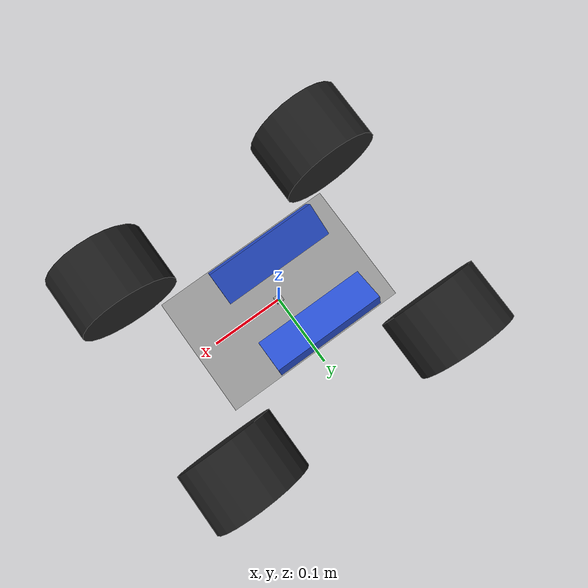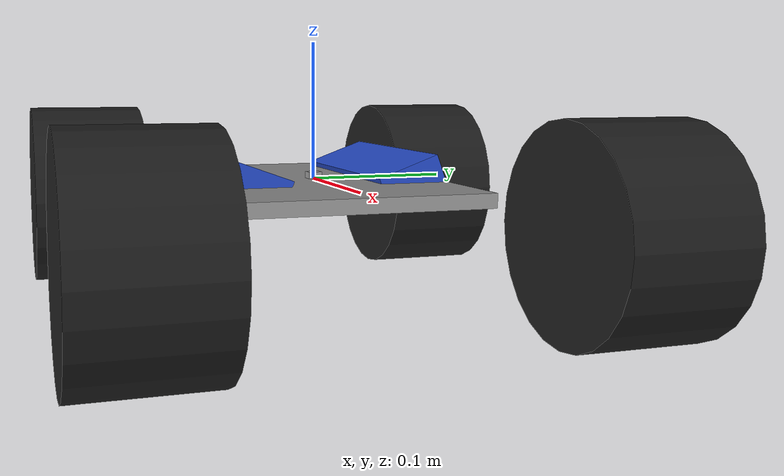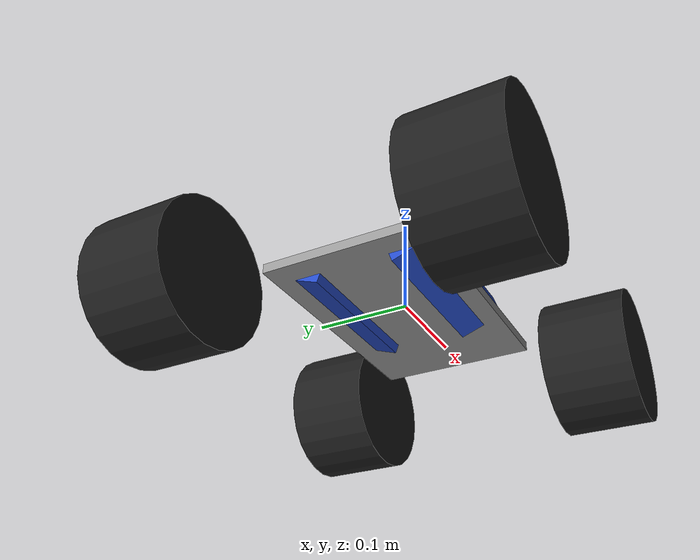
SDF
<?xml version="1.0"?>
<sdf version='1.7'>
  <model name='em_3905'>
    <link name='base_link'>
      <inertial>
        <pose>-0.006634 0 -0.003536 0 -0 0</pose>
        <mass>3.795</mass>
        <inertia>
          <ixx>0.0121404</ixx>
          <ixy>0</ixy>
          <ixz>0.000102071</ixz>
          <iyy>0.0201814</iyy>
          <iyz>0</iyz>
          <izz>0.0301018</izz>
        </inertia>
      </inertial>
      <collision name='base_link_fixed_joint_lump__chassis_collision'>
        <pose>0 0 -0.005 0 -0 0</pose>
        <geometry>
          <box>
            <size>0.258 0.168 0.01</size>
          </box>
        </geometry>
        <surface>
          <contact>
            <ode/>
          </contact>
          <friction>
            <ode/>
          </friction>
        </surface>
      </collision>
      <collision name='base_link_fixed_joint_lump__left_battery_collision_1'>
        <pose>-0.025 0.057319 0.00052 0.349066 -0 0</pose>
        <geometry>
          <box>
            <size>0.16 0.047 0.024</size>
          </box>
        </geometry>
        <surface>
          <contact>
            <ode/>
          </contact>
          <friction>
            <ode/>
          </friction>
        </surface>
      </collision>
      <collision name='base_link_fixed_joint_lump__right_battery_collision_2'>
        <pose>-0.025 -0.057319 0.00052 -0.349066 0 0</pose>
        <geometry>
          <box>
            <size>0.16 0.047 0.024</size>
          </box>
        </geometry>
        <surface>
          <contact>
            <ode/>
          </contact>
          <friction>
            <ode/>
          </friction>
        </surface>
      </collision>
      <visual name='base_link_visual'>
        <pose>0 0 0 0 -0 0</pose>
        <geometry>
          <box>
            <size>0.01 0.01 0.01</size>
          </box>
        </geometry>
        <material>
          <script>
            <name>Gazebo/Grey</name>
            <uri>file://media/materials/scripts/gazebo.material</uri>
          </script>
        </material>
      </visual>
      <visual name='base_link_fixed_joint_lump__chassis_visual_1'>
        <pose>0 0 -0.005 0 -0 0</pose>
        <geometry>
          <box>
            <size>0.258 0.168 0.01</size>
          </box>
        </geometry>
        <material>
          <script>
            <name>Gazebo/Grey</name>
            <uri>file://media/materials/scripts/gazebo.material</uri>
          </script>
        </material>
      </visual>
      <visual name='base_link_fixed_joint_lump__left_battery_visual_2'>
        <pose>-0.025 0.057319 0.00052 0.349066 -0 0</pose>
        <geometry>
          <box>
            <size>0.16 0.047 0.024</size>
          </box>
        </geometry>
        <material>
          <script>
            <name>Gazebo/Blue</name>
            <uri>file://media/materials/scripts/gazebo.material</uri>
          </script>
        </material>
      </visual>
      <visual name='base_link_fixed_joint_lump__right_battery_visual_3'>
        <pose>-0.025 -0.057319 0.00052 -0.349066 0 0</pose>
        <geometry>
          <box>
            <size>0.16 0.047 0.024</size>
          </box>
        </geometry>
        <material>
          <script>
            <name>Gazebo/Blue</name>
            <uri>file://media/materials/scripts/gazebo.material</uri>
          </script>
        </material>
      </visual>
    </link>
    <joint name='left_front_shock' type='prismatic'>
      <pose relative_to='base_link'>0.1675 0.1525 -0.0235 0 -0 0</pose>
      <parent>base_link</parent>
      <child>left_steering_link</child>
      <axis>
        <xyz>0 0 -1</xyz>
        <limit>
          <lower>-0.042</lower>
          <upper>0.042</upper>
          <effort>12.5106</effort>
          <velocity>1000</velocity>
        </limit>
        <dynamics>
          <spring_reference>0</spring_reference>
          <spring_stiffness>0</spring_stiffness>
        </dynamics>
      </axis>
    </joint>
    <link name='left_steering_link'>
      <pose relative_to='left_front_shock'>0 0 0 0 -0 0</pose>
      <inertial>
        <pose>0 0 0 0 -0 0</pose>
        <mass>0.001</mass>
        <inertia>
          <ixx>0.001</ixx>
          <ixy>0</ixy>
          <ixz>0</ixz>
          <iyy>0.001</iyy>
          <iyz>0</iyz>
          <izz>0.001</izz>
        </inertia>
      </inertial>
    </link>
    <joint name='left_steering_joint' type='revolute'>
      <pose relative_to='left_steering_link'>0 0 0 0 -0 0</pose>
      <parent>left_steering_link</parent>
      <child>left_front_axle_carrier</child>
      <axis>
        <xyz>0 0 1</xyz>
        <limit>
          <lower>-0.785398</lower>
          <upper>0.785398</upper>
          <effort>0.5649</effort>
          <velocity>4.553</velocity>
        </limit>
        <dynamics>
          <spring_reference>0</spring_reference>
          <spring_stiffness>0</spring_stiffness>
        </dynamics>
      </axis>
    </joint>
    <link name='left_front_axle_carrier'>
      <pose relative_to='left_steering_joint'>0 0 0 0 -0 0</pose>
      <inertial>
        <pose>0 0 0 0 -0 0</pose>
        <mass>0.001</mass>
        <inertia>
          <ixx>0.001</ixx>
          <ixy>0</ixy>
          <ixz>0</ixz>
          <iyy>0.001</iyy>
          <iyz>0</iyz>
          <izz>0.001</izz>
        </inertia>
      </inertial>
    </link>
    <joint name='left_front_axle' type='revolute'>
      <pose relative_to='left_front_axle_carrier'>0 0 0 1.5708 -0 0</pose>
      <parent>left_front_axle_carrier</parent>
      <child>left_front_wheel</child>
      <axis>
        <xyz>0 0 -1</xyz>
        <limit>
          <effort>5.12766</effort>
          <velocity>244.87</velocity>
          <lower>-1e+16</lower>
          <upper>1e+16</upper>
        </limit>
        <dynamics>
          <spring_reference>0</spring_reference>
          <spring_stiffness>0</spring_stiffness>
        </dynamics>
      </axis>
    </joint>
    <link name='left_front_wheel'>
      <pose relative_to='left_front_axle'>0 0 0 0 -0 0</pose>
      <inertial>
        <pose>0 0 0 0 -0 0</pose>
        <mass>0.29</mass>
        <inertia>
          <ixx>0.000746466</ixx>
          <ixy>0</ixy>
          <ixz>0</ixz>
          <iyy>0.000746466</iyy>
          <iyz>0</iyz>
          <izz>0.00111094</izz>
        </inertia>
      </inertial>
      <collision name='left_front_wheel_collision'>
        <pose>0 -0 0 0 -0 0</pose>
        <geometry>
          <cylinder>
            <length>0.0889</length>
            <radius>0.073025</radius>
          </cylinder>
        </geometry>
        <surface>
          <contact>
            <ode/>
          </contact>
          <friction>
            <ode/>
          </friction>
        </surface>
      </collision>
      <visual name='left_front_wheel_visual'>
        <pose>0 -0 0 0 -0 0</pose>
        <geometry>
          <cylinder>
            <length>0.0889</length>
            <radius>0.073025</radius>
          </cylinder>
        </geometry>
        <material>
          <script>
            <name>Gazebo/Black</name>
            <uri>file://media/materials/scripts/gazebo.material</uri>
          </script>
        </material>
      </visual>
    </link>
    <joint name='left_rear_shock' type='prismatic'>
      <pose relative_to='base_link'>-0.1675 0.1525 -0.0235 0 -0 0</pose>
      <parent>base_link</parent>
      <child>left_rear_axle_carrier</child>
      <axis>
        <xyz>0 0 -1</xyz>
        <limit>
          <lower>-0.042</lower>
          <upper>0.042</upper>
          <effort>12.5106</effort>
          <velocity>1000</velocity>
        </limit>
        <dynamics>
          <spring_reference>0</spring_reference>
          <spring_stiffness>0</spring_stiffness>
        </dynamics>
      </axis>
    </joint>
    <link name='left_rear_axle_carrier'>
      <pose relative_to='left_rear_shock'>0 0 0 0 -0 0</pose>
      <inertial>
        <pose>0 0 0 0 -0 0</pose>
        <mass>0.001</mass>
        <inertia>
          <ixx>0.001</ixx>
          <ixy>0</ixy>
          <ixz>0</ixz>
          <iyy>0.001</iyy>
          <iyz>0</iyz>
          <izz>0.001</izz>
        </inertia>
      </inertial>
    </link>
    <joint name='left_rear_axle' type='revolute'>
      <pose relative_to='left_rear_axle_carrier'>0 0 0 1.5708 -0 0</pose>
      <parent>left_rear_axle_carrier</parent>
      <child>left_rear_wheel</child>
      <axis>
        <xyz>0 0 -1</xyz>
        <limit>
          <effort>5.12766</effort>
          <velocity>244.87</velocity>
          <lower>-1e+16</lower>
          <upper>1e+16</upper>
        </limit>
        <dynamics>
          <spring_reference>0</spring_reference>
          <spring_stiffness>0</spring_stiffness>
        </dynamics>
      </axis>
    </joint>
    <link name='left_rear_wheel'>
      <pose relative_to='left_rear_axle'>0 0 0 0 -0 0</pose>
      <inertial>
        <pose>0 0 0 0 -0 0</pose>
        <mass>0.29</mass>
        <inertia>
          <ixx>0.000746466</ixx>
          <ixy>0</ixy>
          <ixz>0</ixz>
          <iyy>0.000746466</iyy>
          <iyz>0</iyz>
          <izz>0.00111094</izz>
        </inertia>
      </inertial>
      <collision name='left_rear_wheel_collision'>
        <pose>0 -0 0 0 -0 0</pose>
        <geometry>
          <cylinder>
            <length>0.0889</length>
            <radius>0.073025</radius>
          </cylinder>
        </geometry>
        <surface>
          <contact>
            <ode/>
          </contact>
          <friction>
            <ode/>
          </friction>
        </surface>
      </collision>
      <visual name='left_rear_wheel_visual'>
        <pose>0 -0 0 0 -0 0</pose>
        <geometry>
          <cylinder>
            <length>0.0889</length>
            <radius>0.073025</radius>
          </cylinder>
        </geometry>
        <material>
          <script>
            <name>Gazebo/Black</name>
            <uri>file://media/materials/scripts/gazebo.material</uri>
          </script>
        </material>
      </visual>
    </link>
    <joint name='right_front_shock' type='prismatic'>
      <pose relative_to='base_link'>0.1675 -0.1525 -0.0235 0 -0 0</pose>
      <parent>base_link</parent>
      <child>right_steering_link</child>
      <axis>
        <xyz>0 0 -1</xyz>
        <limit>
          <lower>-0.042</lower>
          <upper>0.042</upper>
          <effort>12.5106</effort>
          <velocity>1000</velocity>
        </limit>
        <dynamics>
          <spring_reference>0</spring_reference>
          <spring_stiffness>0</spring_stiffness>
        </dynamics>
      </axis>
    </joint>
    <link name='right_steering_link'>
      <pose relative_to='right_front_shock'>0 0 0 0 -0 0</pose>
      <inertial>
        <pose>0 0 0 0 -0 0</pose>
        <mass>0.001</mass>
        <inertia>
          <ixx>0.001</ixx>
          <ixy>0</ixy>
          <ixz>0</ixz>
          <iyy>0.001</iyy>
          <iyz>0</iyz>
          <izz>0.001</izz>
        </inertia>
      </inertial>
    </link>
    <joint name='right_steering_joint' type='revolute'>
      <pose relative_to='right_steering_link'>0 0 0 0 -0 0</pose>
      <parent>right_steering_link</parent>
      <child>right_front_axle_carrier</child>
      <axis>
        <xyz>0 0 1</xyz>
        <limit>
          <lower>-0.785398</lower>
          <upper>0.785398</upper>
          <effort>0.5649</effort>
          <velocity>4.553</velocity>
        </limit>
        <dynamics>
          <spring_reference>0</spring_reference>
          <spring_stiffness>0</spring_stiffness>
        </dynamics>
      </axis>
    </joint>
    <link name='right_front_axle_carrier'>
      <pose relative_to='right_steering_joint'>0 0 0 0 -0 0</pose>
      <inertial>
        <pose>0 0 0 0 -0 0</pose>
        <mass>0.001</mass>
        <inertia>
          <ixx>0.001</ixx>
          <ixy>0</ixy>
          <ixz>0</ixz>
          <iyy>0.001</iyy>
          <iyz>0</iyz>
          <izz>0.001</izz>
        </inertia>
      </inertial>
    </link>
    <joint name='right_front_axle' type='revolute'>
      <pose relative_to='right_front_axle_carrier'>0 0 0 1.5708 -0 0</pose>
      <parent>right_front_axle_carrier</parent>
      <child>right_front_wheel</child>
      <axis>
        <xyz>0 0 -1</xyz>
        <limit>
          <effort>5.12766</effort>
          <velocity>244.87</velocity>
          <lower>-1e+16</lower>
          <upper>1e+16</upper>
        </limit>
        <dynamics>
          <spring_reference>0</spring_reference>
          <spring_stiffness>0</spring_stiffness>
        </dynamics>
      </axis>
    </joint>
    <link name='right_front_wheel'>
      <pose relative_to='right_front_axle'>0 0 0 0 -0 0</pose>
      <inertial>
        <pose>0 0 0 0 -0 0</pose>
        <mass>0.29</mass>
        <inertia>
          <ixx>0.000746466</ixx>
          <ixy>0</ixy>
          <ixz>0</ixz>
          <iyy>0.000746466</iyy>
          <iyz>0</iyz>
          <izz>0.00111094</izz>
        </inertia>
      </inertial>
      <collision name='right_front_wheel_collision'>
        <pose>0 0 0 0 -0 0</pose>
        <geometry>
          <cylinder>
            <length>0.0889</length>
            <radius>0.073025</radius>
          </cylinder>
        </geometry>
        <surface>
          <contact>
            <ode/>
          </contact>
          <friction>
            <ode/>
          </friction>
        </surface>
      </collision>
      <visual name='right_front_wheel_visual'>
        <pose>0 0 0 0 -0 0</pose>
        <geometry>
          <cylinder>
            <length>0.0889</length>
            <radius>0.073025</radius>
          </cylinder>
        </geometry>
        <material>
          <script>
            <name>Gazebo/Black</name>
            <uri>file://media/materials/scripts/gazebo.material</uri>
          </script>
        </material>
      </visual>
    </link>
    <joint name='right_rear_shock' type='prismatic'>
      <pose relative_to='base_link'>-0.1675 -0.1525 -0.0235 0 -0 0</pose>
      <parent>base_link</parent>
      <child>right_rear_axle_carrier</child>
      <axis>
        <xyz>0 0 -1</xyz>
        <limit>
          <lower>-0.042</lower>
          <upper>0.042</upper>
          <effort>12.5106</effort>
          <velocity>1000</velocity>
        </limit>
        <dynamics>
          <spring_reference>0</spring_reference>
          <spring_stiffness>0</spring_stiffness>
        </dynamics>
      </axis>
    </joint>
    <link name='right_rear_axle_carrier'>
      <pose relative_to='right_rear_shock'>0 0 0 0 -0 0</pose>
      <inertial>
        <pose>0 0 0 0 -0 0</pose>
        <mass>0.001</mass>
        <inertia>
          <ixx>0.001</ixx>
          <ixy>0</ixy>
          <ixz>0</ixz>
          <iyy>0.001</iyy>
          <iyz>0</iyz>
          <izz>0.001</izz>
        </inertia>
      </inertial>
    </link>
    <joint name='right_rear_axle' type='revolute'>
      <pose relative_to='right_rear_axle_carrier'>0 0 0 1.5708 -0 0</pose>
      <parent>right_rear_axle_carrier</parent>
      <child>right_rear_wheel</child>
      <axis>
        <xyz>0 0 -1</xyz>
        <limit>
          <effort>5.12766</effort>
          <velocity>244.87</velocity>
          <lower>-1e+16</lower>
          <upper>1e+16</upper>
        </limit>
        <dynamics>
          <spring_reference>0</spring_reference>
          <spring_stiffness>0</spring_stiffness>
        </dynamics>
      </axis>
    </joint>
    <link name='right_rear_wheel'>
      <pose relative_to='right_rear_axle'>0 0 0 0 -0 0</pose>
      <inertial>
        <pose>0 0 0 0 -0 0</pose>
        <mass>0.29</mass>
        <inertia>
          <ixx>0.000746466</ixx>
          <ixy>0</ixy>
          <ixz>0</ixz>
          <iyy>0.000746466</iyy>
          <iyz>0</iyz>
          <izz>0.00111094</izz>
        </inertia>
      </inertial>
      <collision name='right_rear_wheel_collision'>
        <pose>0 0 0 0 -0 0</pose>
        <geometry>
          <cylinder>
            <length>0.0889</length>
            <radius>0.073025</radius>
          </cylinder>
        </geometry>
        <surface>
          <contact>
            <ode/>
          </contact>
          <friction>
            <ode/>
          </friction>
        </surface>
      </collision>
      <visual name='right_rear_wheel_visual'>
        <pose>0 0 0 0 -0 0</pose>
        <geometry>
          <cylinder>
            <length>0.0889</length>
            <radius>0.073025</radius>
          </cylinder>
        </geometry>
        <material>
          <script>
            <name>Gazebo/Black</name>
            <uri>file://media/materials/scripts/gazebo.material</uri>
          </script>
        </material>
      </visual>
    </link>
    <static>0</static>
    <plugin name='gazebo_ros_control' filename='libgazebo_ros_control.so'/>
  </model>
</sdf>
